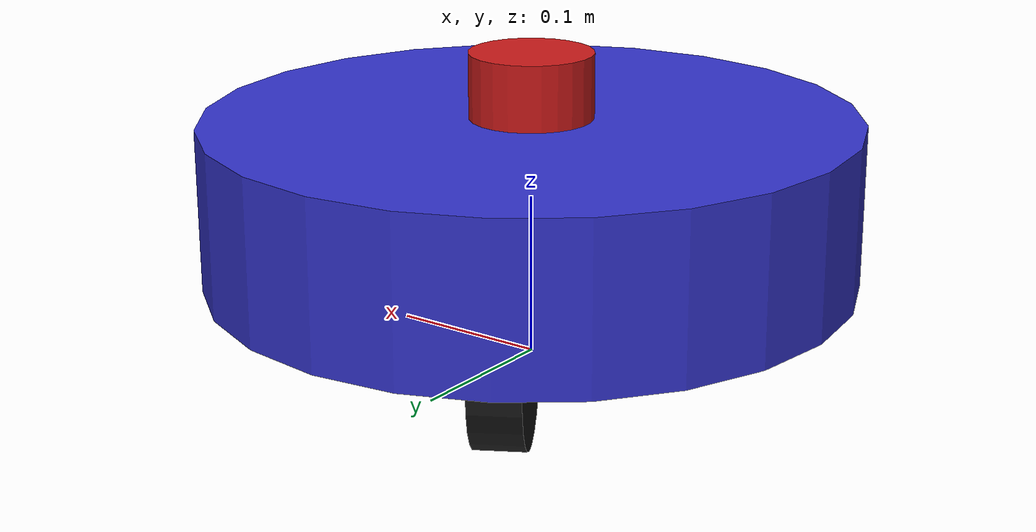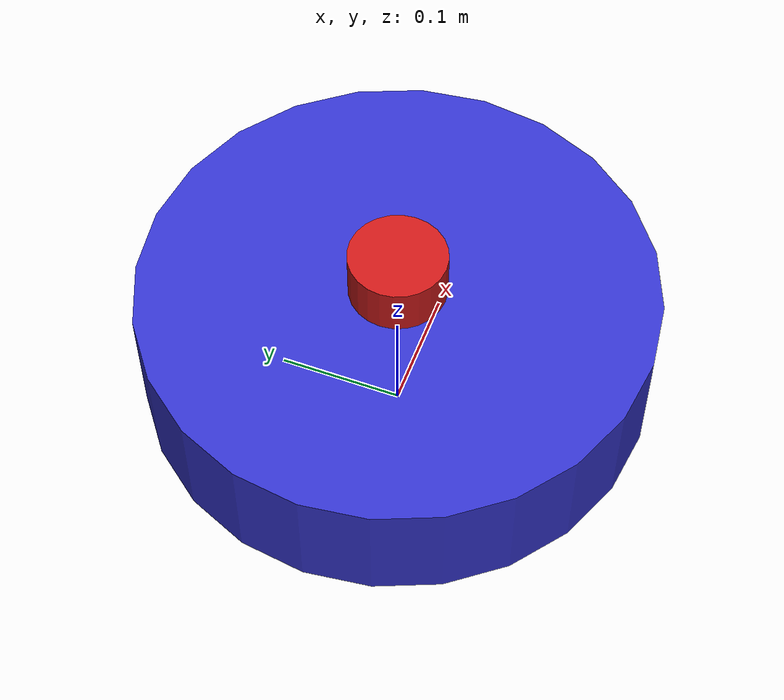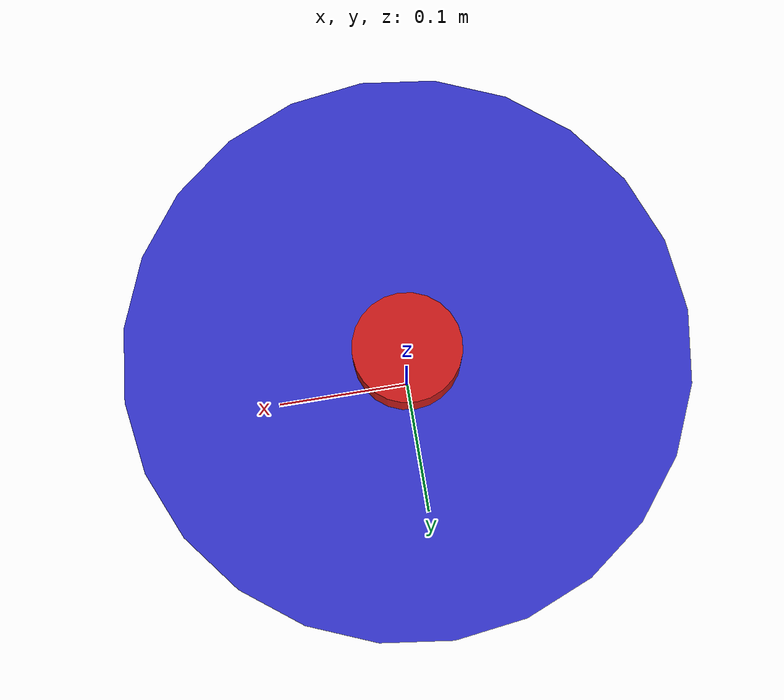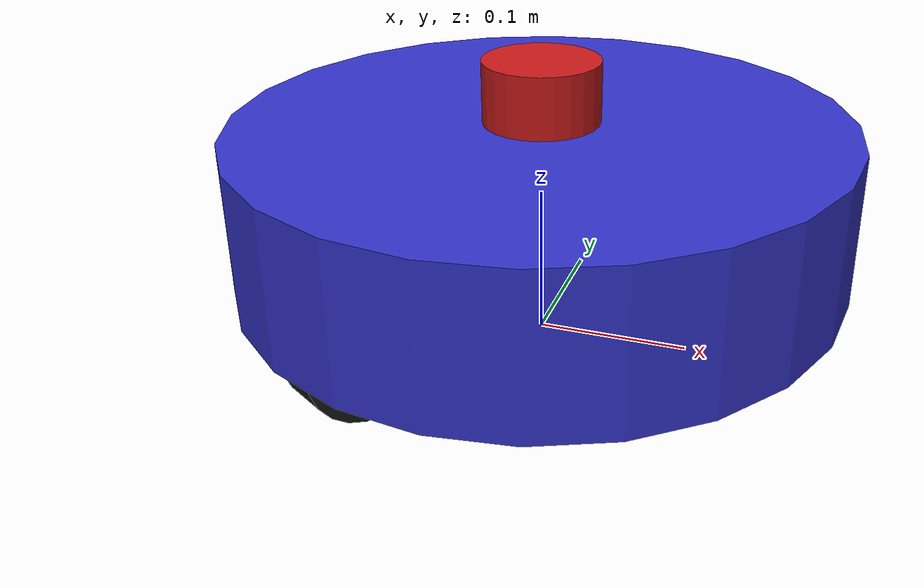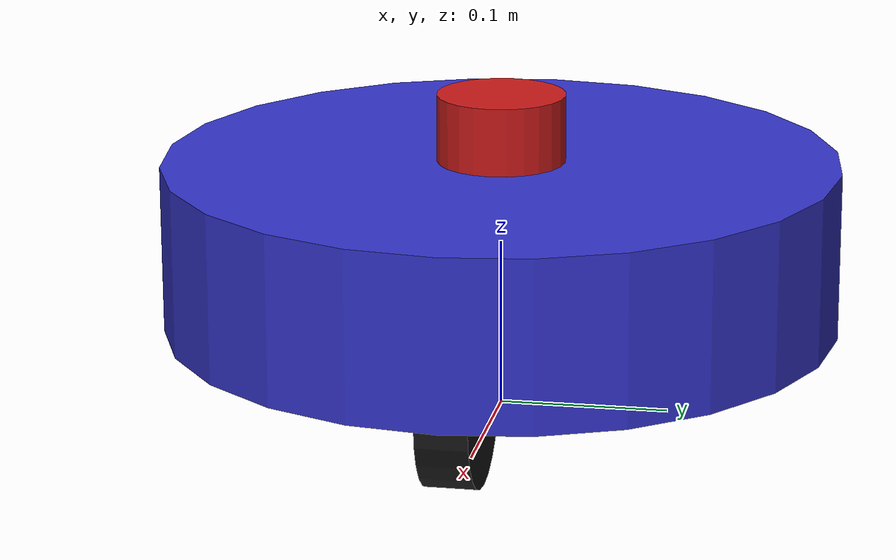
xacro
<?xml version="1.0"?>
<robot xmlns:xacro="http://www.ros.org/wiki/xacro" name="omni_base">

  <!-- Constants -->
  <xacro:property name="PI" value="3.1415926535897931"/>
  <xacro:property name="base_radius" value="0.2"/>
  <xacro:property name="base_height" value="0.1"/>
  <xacro:property name="wheel_radius" value="0.05"/>
  <xacro:property name="wheel_width" value="0.03"/>
  <xacro:property name="wheel_offset_z" value="-0.05"/>

  <!-- Base Link (reference frame) -->
  <link name="base_link"/>

  <!-- Base Footprint -->
  <link name="base_footprint"/>

  <joint name="base_footprint_joint" type="fixed">
    <parent link="base_footprint"/>
    <child link="base_link"/>
    <origin xyz="0 0 ${wheel_radius - wheel_offset_z}" rpy="0 0 0"/>
  </joint>

  <!-- Chassis -->
  <link name="chassis">
    <visual>
      <geometry>
        <cylinder radius="${base_radius}" length="${base_height}"/>
      </geometry>
      <material name="blue">
        <color rgba="0.2 0.2 0.8 1.0"/>
      </material>
    </visual>
    <collision>
      <geometry>
        <cylinder radius="${base_radius}" length="${base_height}"/>
      </geometry>
    </collision>
    <inertial>
      <mass value="5.0"/>
      <inertia ixx="0.0541" ixy="0.0" ixz="0.0"
               iyy="0.0541" iyz="0.0"
               izz="0.1"/>
    </inertial>
  </link>

  <joint name="chassis_joint" type="fixed">
    <parent link="base_link"/>
    <child link="chassis"/>
    <origin xyz="0 0 0" rpy="0 0 0"/>
  </joint>

  <!-- Omni Wheel Macro -->
  <xacro:macro name="omni_wheel" params="prefix angle">
    <link name="${prefix}_wheel">
      <visual>
        <geometry>
          <cylinder radius="${wheel_radius}" length="${wheel_width}"/>
        </geometry>
        <origin xyz="0 0 0" rpy="${PI/2} 0 0"/>
        <material name="black">
          <color rgba="0.1 0.1 0.1 1.0"/>
        </material>
      </visual>
      <collision>
        <geometry>
          <cylinder radius="${wheel_radius}" length="${wheel_width}"/>
        </geometry>
        <origin xyz="0 0 0" rpy="${PI/2} 0 0"/>
      </collision>
      <inertial>
        <mass value="0.5"/>
        <inertia ixx="0.000625" ixy="0.0" ixz="0.0"
                 iyy="0.001125" iyz="0.0"
                 izz="0.000625"/>
      </inertial>
    </link>

    <joint name="${prefix}_wheel_joint" type="continuous">
      <parent link="base_link"/>
      <child link="${prefix}_wheel"/>
      <origin xyz="${base_radius * 0.7 * cos(angle)} ${base_radius * 0.7 * sin(angle)} ${wheel_offset_z}"
              rpy="0 0 ${angle}"/>
      <axis xyz="0 1 0"/>
    </joint>
  </xacro:macro>

  <!-- Three Omni Wheels at 120 degree intervals -->
  <xacro:omni_wheel prefix="front" angle="0"/>
  <xacro:omni_wheel prefix="left" angle="${2*PI/3}"/>
  <xacro:omni_wheel prefix="right" angle="${-2*PI/3}"/>

  <!-- RP LiDAR A2M8 -->
  <link name="laser">
    <visual>
      <geometry>
        <cylinder radius="0.038" length="0.04"/>
      </geometry>
      <material name="red">
        <color rgba="0.8 0.1 0.1 1.0"/>
      </material>
    </visual>
    <collision>
      <geometry>
        <cylinder radius="0.038" length="0.04"/>
      </geometry>
    </collision>
    <inertial>
      <mass value="0.17"/>
      <inertia ixx="0.0001" ixy="0.0" ixz="0.0"
               iyy="0.0001" iyz="0.0"
               izz="0.0001"/>
    </inertial>
  </link>

  <joint name="laser_joint" type="fixed">
    <parent link="base_link"/>
    <child link="laser"/>
    <origin xyz="0 0 ${base_height/2 + 0.02}" rpy="0 0 0"/>
  </joint>

</robot>
